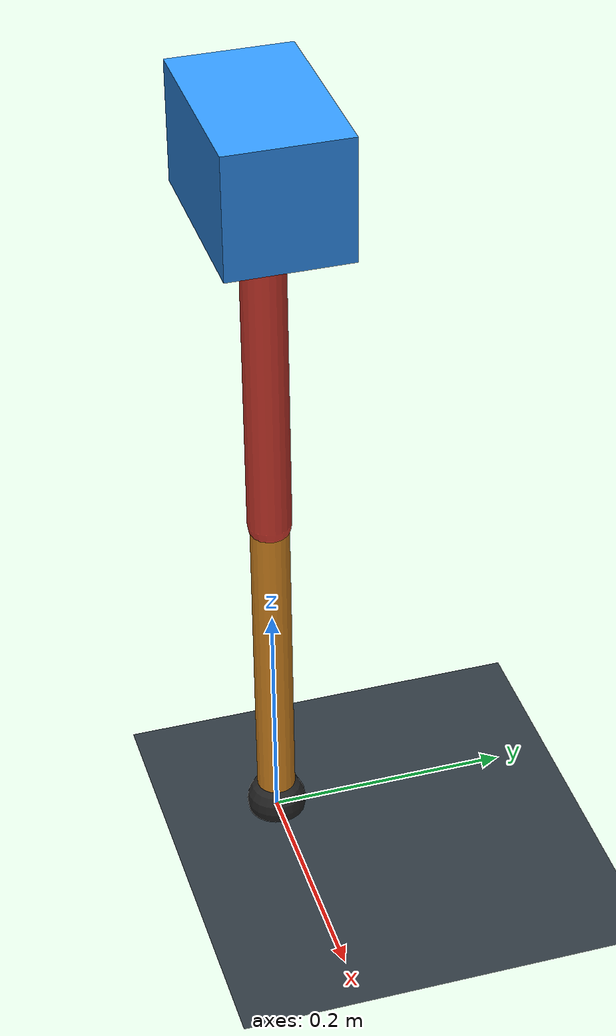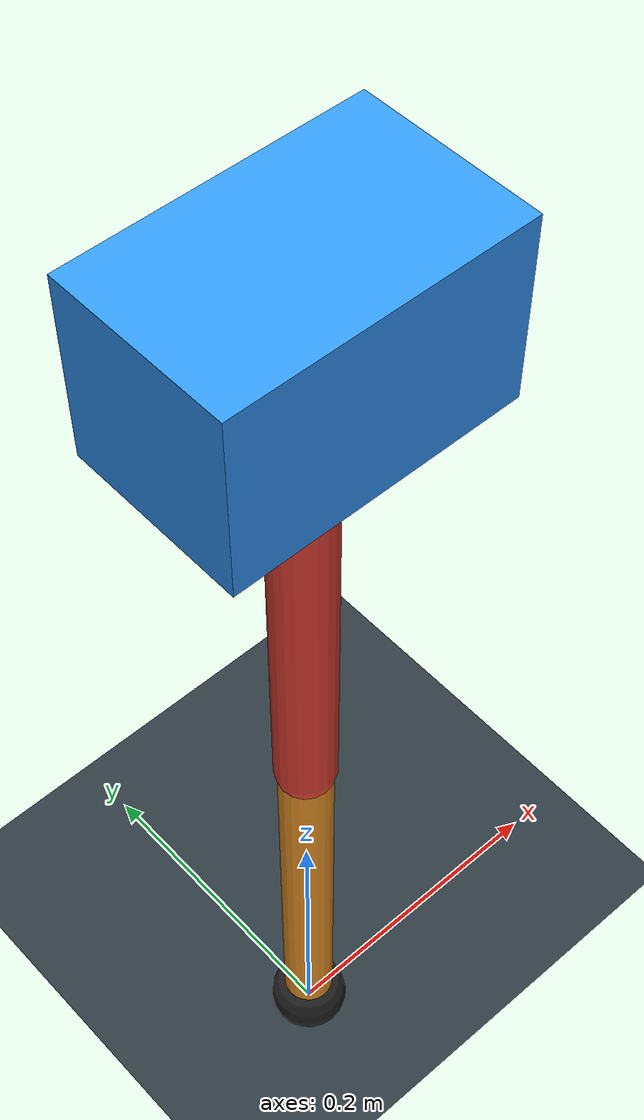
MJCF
<mujoco model="single_axis_two_bar">
  <compiler angle="radian" inertiafromgeom="true"/>
  <option timestep="0.001" integrator="implicitfast" gravity="0 0 -9.81"/>
  <default>
    <joint damping="0.08"/>
    <geom friction="1.2 0.01 0.0001" condim="3"/>
  </default>
  <worldbody>
    <geom name="floor" type="plane" size="5 5 0.1" rgba="0.18 0.22 0.25 1"/>
    <body name="carriage" pos="0 0 0.6184119695305221">
      <joint name="pole_slide" type="slide" axis="0 0 1"/>
      <geom name="payload" type="box" size="0.08 0.05 0.05" mass="3.2455577029062836" rgba="0.2 0.6 1 1"/>
      <body name="thigh" pos="0 0 0">
        <joint name="hip" type="hinge" axis="0 1 0"/>
        <geom name="thigh_link" type="capsule" fromto="0 0 0 0 0 -0.32340893846362323" size="0.018" mass="0.2304331421274119" rgba="0.9 0.25 0.2 1"/>
        <body name="shank" pos="0 0 -0.32340893846362323">
          <joint name="knee" type="hinge" axis="0 1 0"/>
          <geom name="shank_link" type="capsule" fromto="0 0 0 0 0 -0.2883559785781521" size="0.016" mass="0.20545744502501478" rgba="0.95 0.6 0.15 1"/>
          <geom name="foot" type="sphere" pos="0 0 -0.2883559785781521" size="0.025" mass="0.03" rgba="0.15 0.15 0.15 1"/>
          <site name="toe" pos="0 0 -0.2883559785781521" size="0.008"/>
        </body>
      </body>
    </body>
  </worldbody>
  <actuator>
    <motor name="hip_motor" joint="hip" ctrlrange="-17.541746610761958 17.541746610761958"/>
    <motor name="knee_motor" joint="knee" ctrlrange="-137.6244688909394 137.6244688909394"/>
  </actuator>
</mujoco>
